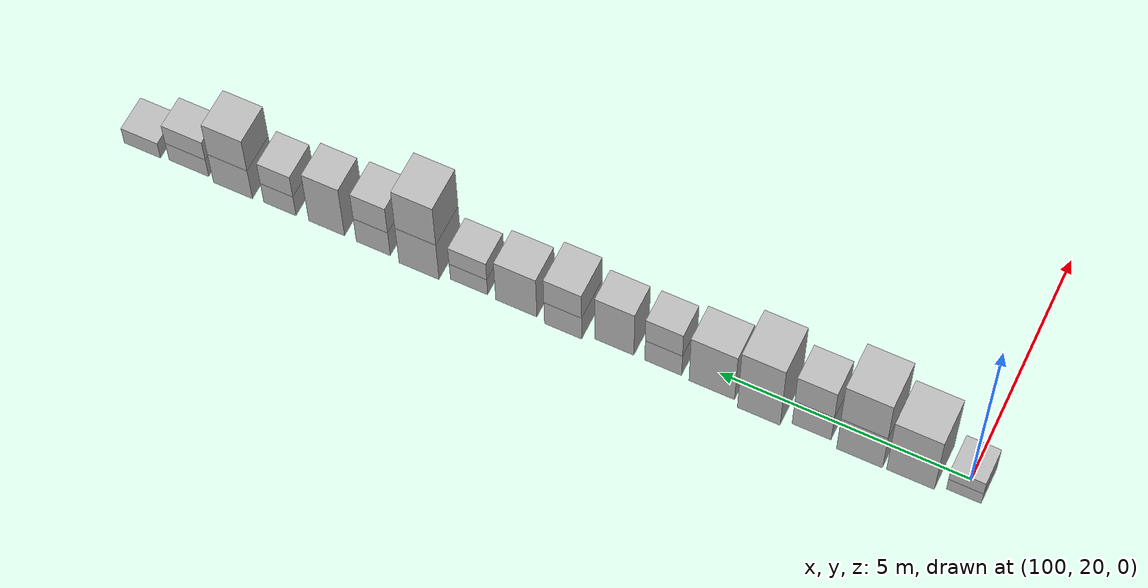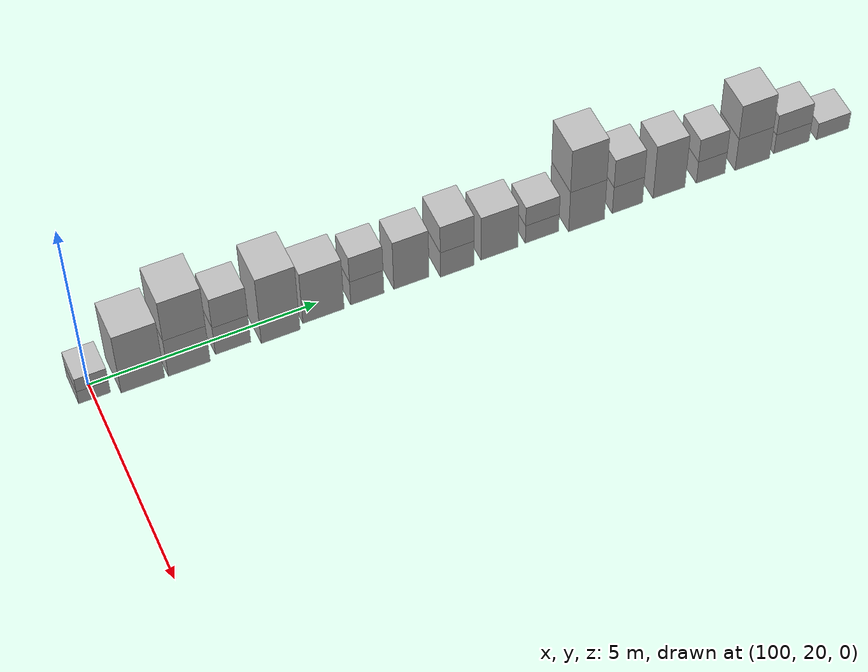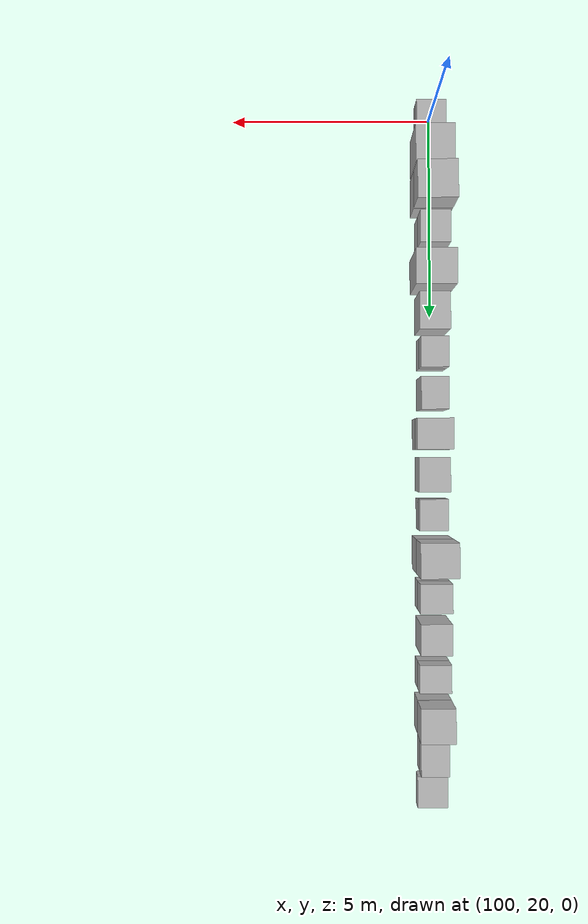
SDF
<sdf version="1.5">
 <world name="default">
  <model name="ground_plane">
   <static>true</static>
   <link name="link">
    <collision name="collision">
     <geometry><plane><normal>0 0 1</normal><size>250 250</size></plane></geometry>
     <surface><friction><ode><mu>1</mu><mu2>1</mu2></ode></friction></surface>
    </collision>
    <visual name="grass">
     <cast_shadows>false</cast_shadows>
     <geometry><mesh><uri>file://grass_plane/meshes/grass_plane.dae</uri></mesh></geometry>
    </visual>
   </link>
  </model>
  <model name="Cardboard_box_390">
   <link name="link_0">
    <pose>100 20 0 0 0 0</pose>
    <inertial>
     <mass>1</mass>
     <inertia>
      <ixx>0.166667</ixx>
      <ixy>0</ixy>
      <ixz>0</ixz>
      <iyy>0.166667</iyy>
      <iyz>0</iyz>
      <izz>0.166667</izz>
     </inertia>
    </inertial>
    <collision name="collision">
     <geometry>
      <mesh>
       <uri>model://Cardboard_box/meshes/cardboard_box.dae</uri>
       <scale>1.87556065422 1.71114517624 1.05224010482</scale>
      </mesh>
     </geometry>
    </collision>
    <visual name="visual">
     <geometry>
      <mesh>
       <uri>model://Cardboard_box/meshes/cardboard_box.dae</uri>
       <scale>1.87556065422 1.71114517624 1.05224010482</scale>
      </mesh>
     </geometry>
    </visual>
   </link>
   <static>1</static>
  </model>
  <model name="Cardboard_box_top_390">
   <link name="link_0">
    <pose>100 20 0.420896041928 0 0 0</pose>
    <inertial>
     <mass>1</mass>
     <inertia>
      <ixx>0.166667</ixx>
      <ixy>0</ixy>
      <ixz>0</ixz>
      <iyy>0.166667</iyy>
      <iyz>0</iyz>
      <izz>0.166667</izz>
     </inertia>
    </inertial>
    <collision name="collision">
     <geometry>
      <mesh>
       <uri>model://Cardboard_box/meshes/cardboard_box.dae</uri>
       <scale>1.87556065422 1.71114517624 1.05224010482</scale>
      </mesh>
     </geometry>
    </collision>
    <visual name="visual">
     <geometry>
      <mesh>
       <uri>model://Cardboard_box/meshes/cardboard_box.dae</uri>
       <scale>1.87556065422 1.71114517624 1.05224010482</scale>
      </mesh>
     </geometry>
    </visual>
   </link>
   <static>1</static>
  </model>
  <model name="Cardboard_box_391">
   <link name="link_0">
    <pose>100 21 0 0 0 0</pose>
    <inertial>
     <mass>1</mass>
     <inertia>
      <ixx>0.166667</ixx>
      <ixy>0</ixy>
      <ixz>0</ixz>
      <iyy>0.166667</iyy>
      <iyz>0</iyz>
      <izz>0.166667</izz>
     </inertia>
    </inertial>
    <collision name="collision">
     <geometry>
      <mesh>
       <uri>model://Cardboard_box/meshes/cardboard_box.dae</uri>
       <scale>2.40039671663 2.35947398998 4.75779150571</scale>
      </mesh>
     </geometry>
    </collision>
    <visual name="visual">
     <geometry>
      <mesh>
       <uri>model://Cardboard_box/meshes/cardboard_box.dae</uri>
       <scale>2.40039671663 2.35947398998 4.75779150571</scale>
      </mesh>
     </geometry>
    </visual>
   </link>
   <static>1</static>
  </model>
  <model name="Cardboard_box_392">
   <link name="link_0">
    <pose>100 22 0 0 0 0</pose>
    <inertial>
     <mass>1</mass>
     <inertia>
      <ixx>0.166667</ixx>
      <ixy>0</ixy>
      <ixz>0</ixz>
      <iyy>0.166667</iyy>
      <iyz>0</iyz>
      <izz>0.166667</izz>
     </inertia>
    </inertial>
    <collision name="collision">
     <geometry>
      <mesh>
       <uri>model://Cardboard_box/meshes/cardboard_box.dae</uri>
       <scale>2.43563004836 2.29058104501 3.10501950711</scale>
      </mesh>
     </geometry>
    </collision>
    <visual name="visual">
     <geometry>
      <mesh>
       <uri>model://Cardboard_box/meshes/cardboard_box.dae</uri>
       <scale>2.43563004836 2.29058104501 3.10501950711</scale>
      </mesh>
     </geometry>
    </visual>
   </link>
   <static>1</static>
  </model>
  <model name="Cardboard_box_top_392">
   <link name="link_0">
    <pose>100 22 1.24200780284 0 0 0</pose>
    <inertial>
     <mass>1</mass>
     <inertia>
      <ixx>0.166667</ixx>
      <ixy>0</ixy>
      <ixz>0</ixz>
      <iyy>0.166667</iyy>
      <iyz>0</iyz>
      <izz>0.166667</izz>
     </inertia>
    </inertial>
    <collision name="collision">
     <geometry>
      <mesh>
       <uri>model://Cardboard_box/meshes/cardboard_box.dae</uri>
       <scale>2.43563004836 2.29058104501 3.10501950711</scale>
      </mesh>
     </geometry>
    </collision>
    <visual name="visual">
     <geometry>
      <mesh>
       <uri>model://Cardboard_box/meshes/cardboard_box.dae</uri>
       <scale>2.43563004836 2.29058104501 3.10501950711</scale>
      </mesh>
     </geometry>
    </visual>
   </link>
   <static>1</static>
  </model>
  <model name="Cardboard_box_393">
   <link name="link_0">
    <pose>100 23 0 0 0 0</pose>
    <inertial>
     <mass>1</mass>
     <inertia>
      <ixx>0.166667</ixx>
      <ixy>0</ixy>
      <ixz>0</ixz>
      <iyy>0.166667</iyy>
      <iyz>0</iyz>
      <izz>0.166667</izz>
     </inertia>
    </inertial>
    <collision name="collision">
     <geometry>
      <mesh>
       <uri>model://Cardboard_box/meshes/cardboard_box.dae</uri>
       <scale>1.85336993509 1.95636914175 2.32344695447</scale>
      </mesh>
     </geometry>
    </collision>
    <visual name="visual">
     <geometry>
      <mesh>
       <uri>model://Cardboard_box/meshes/cardboard_box.dae</uri>
       <scale>1.85336993509 1.95636914175 2.32344695447</scale>
      </mesh>
     </geometry>
    </visual>
   </link>
   <static>1</static>
  </model>
  <model name="Cardboard_box_top_393">
   <link name="link_0">
    <pose>100 23 0.92937878179 0 0 0</pose>
    <inertial>
     <mass>1</mass>
     <inertia>
      <ixx>0.166667</ixx>
      <ixy>0</ixy>
      <ixz>0</ixz>
      <iyy>0.166667</iyy>
      <iyz>0</iyz>
      <izz>0.166667</izz>
     </inertia>
    </inertial>
    <collision name="collision">
     <geometry>
      <mesh>
       <uri>model://Cardboard_box/meshes/cardboard_box.dae</uri>
       <scale>1.85336993509 1.95636914175 2.32344695447</scale>
      </mesh>
     </geometry>
    </collision>
    <visual name="visual">
     <geometry>
      <mesh>
       <uri>model://Cardboard_box/meshes/cardboard_box.dae</uri>
       <scale>1.85336993509 1.95636914175 2.32344695447</scale>
      </mesh>
     </geometry>
    </visual>
   </link>
   <static>1</static>
  </model>
  <model name="Cardboard_box_394">
   <link name="link_0">
    <pose>100 24 0 0 0 0</pose>
    <inertial>
     <mass>1</mass>
     <inertia>
      <ixx>0.166667</ixx>
      <ixy>0</ixy>
      <ixz>0</ixz>
      <iyy>0.166667</iyy>
      <iyz>0</iyz>
      <izz>0.166667</izz>
     </inertia>
    </inertial>
    <collision name="collision">
     <geometry>
      <mesh>
       <uri>model://Cardboard_box/meshes/cardboard_box.dae</uri>
       <scale>2.49157968809 2.16108012156 5.37205537778</scale>
      </mesh>
     </geometry>
    </collision>
    <visual name="visual">
     <geometry>
      <mesh>
       <uri>model://Cardboard_box/meshes/cardboard_box.dae</uri>
       <scale>2.49157968809 2.16108012156 5.37205537778</scale>
      </mesh>
     </geometry>
    </visual>
   </link>
   <static>1</static>
  </model>
  <model name="Cardboard_box_395">
   <link name="link_0">
    <pose>100 25 0 0 0 0</pose>
    <inertial>
     <mass>1</mass>
     <inertia>
      <ixx>0.166667</ixx>
      <ixy>0</ixy>
      <ixz>0</ixz>
      <iyy>0.166667</iyy>
      <iyz>0</iyz>
      <izz>0.166667</izz>
     </inertia>
    </inertial>
    <collision name="collision">
     <geometry>
      <mesh>
       <uri>model://Cardboard_box/meshes/cardboard_box.dae</uri>
       <scale>1.88702617052 2.3217900141 4.16092421792</scale>
      </mesh>
     </geometry>
    </collision>
    <visual name="visual">
     <geometry>
      <mesh>
       <uri>model://Cardboard_box/meshes/cardboard_box.dae</uri>
       <scale>1.88702617052 2.3217900141 4.16092421792</scale>
      </mesh>
     </geometry>
    </visual>
   </link>
   <static>1</static>
  </model>
  <model name="Cardboard_box_396">
   <link name="link_0">
    <pose>100 26 0 0 0 0</pose>
    <inertial>
     <mass>1</mass>
     <inertia>
      <ixx>0.166667</ixx>
      <ixy>0</ixy>
      <ixz>0</ixz>
      <iyy>0.166667</iyy>
      <iyz>0</iyz>
      <izz>0.166667</izz>
     </inertia>
    </inertial>
    <collision name="collision">
     <geometry>
      <mesh>
       <uri>model://Cardboard_box/meshes/cardboard_box.dae</uri>
       <scale>1.71821019752 1.88590019573 1.9733007212</scale>
      </mesh>
     </geometry>
    </collision>
    <visual name="visual">
     <geometry>
      <mesh>
       <uri>model://Cardboard_box/meshes/cardboard_box.dae</uri>
       <scale>1.71821019752 1.88590019573 1.9733007212</scale>
      </mesh>
     </geometry>
    </visual>
   </link>
   <static>1</static>
  </model>
  <model name="Cardboard_box_top_396">
   <link name="link_0">
    <pose>100 26 0.789320288481 0 0 0</pose>
    <inertial>
     <mass>1</mass>
     <inertia>
      <ixx>0.166667</ixx>
      <ixy>0</ixy>
      <ixz>0</ixz>
      <iyy>0.166667</iyy>
      <iyz>0</iyz>
      <izz>0.166667</izz>
     </inertia>
    </inertial>
    <collision name="collision">
     <geometry>
      <mesh>
       <uri>model://Cardboard_box/meshes/cardboard_box.dae</uri>
       <scale>1.71821019752 1.88590019573 1.9733007212</scale>
      </mesh>
     </geometry>
    </collision>
    <visual name="visual">
     <geometry>
      <mesh>
       <uri>model://Cardboard_box/meshes/cardboard_box.dae</uri>
       <scale>1.71821019752 1.88590019573 1.9733007212</scale>
      </mesh>
     </geometry>
    </visual>
   </link>
   <static>1</static>
  </model>
  <model name="Cardboard_box_397">
   <link name="link_0">
    <pose>100 27 0 0 0 0</pose>
    <inertial>
     <mass>1</mass>
     <inertia>
      <ixx>0.166667</ixx>
      <ixy>0</ixy>
      <ixz>0</ixz>
      <iyy>0.166667</iyy>
      <iyz>0</iyz>
      <izz>0.166667</izz>
     </inertia>
    </inertial>
    <collision name="collision">
     <geometry>
      <mesh>
       <uri>model://Cardboard_box/meshes/cardboard_box.dae</uri>
       <scale>1.70413868376 2.02480564103 3.91304158672</scale>
      </mesh>
     </geometry>
    </collision>
    <visual name="visual">
     <geometry>
      <mesh>
       <uri>model://Cardboard_box/meshes/cardboard_box.dae</uri>
       <scale>1.70413868376 2.02480564103 3.91304158672</scale>
      </mesh>
     </geometry>
    </visual>
   </link>
   <static>1</static>
  </model>
  <model name="Cardboard_box_398">
   <link name="link_0">
    <pose>100 28 0 0 0 0</pose>
    <inertial>
     <mass>1</mass>
     <inertia>
      <ixx>0.166667</ixx>
      <ixy>0</ixy>
      <ixz>0</ixz>
      <iyy>0.166667</iyy>
      <iyz>0</iyz>
      <izz>0.166667</izz>
     </inertia>
    </inertial>
    <collision name="collision">
     <geometry>
      <mesh>
       <uri>model://Cardboard_box/meshes/cardboard_box.dae</uri>
       <scale>2.25365084118 1.93574905981 2.09267882898</scale>
      </mesh>
     </geometry>
    </collision>
    <visual name="visual">
     <geometry>
      <mesh>
       <uri>model://Cardboard_box/meshes/cardboard_box.dae</uri>
       <scale>2.25365084118 1.93574905981 2.09267882898</scale>
      </mesh>
     </geometry>
    </visual>
   </link>
   <static>1</static>
  </model>
  <model name="Cardboard_box_top_398">
   <link name="link_0">
    <pose>100 28 0.83707153159 0 0 0</pose>
    <inertial>
     <mass>1</mass>
     <inertia>
      <ixx>0.166667</ixx>
      <ixy>0</ixy>
      <ixz>0</ixz>
      <iyy>0.166667</iyy>
      <iyz>0</iyz>
      <izz>0.166667</izz>
     </inertia>
    </inertial>
    <collision name="collision">
     <geometry>
      <mesh>
       <uri>model://Cardboard_box/meshes/cardboard_box.dae</uri>
       <scale>2.25365084118 1.93574905981 2.09267882898</scale>
      </mesh>
     </geometry>
    </collision>
    <visual name="visual">
     <geometry>
      <mesh>
       <uri>model://Cardboard_box/meshes/cardboard_box.dae</uri>
       <scale>2.25365084118 1.93574905981 2.09267882898</scale>
      </mesh>
     </geometry>
    </visual>
   </link>
   <static>1</static>
  </model>
  <model name="Cardboard_box_399">
   <link name="link_0">
    <pose>100 29 0 0 0 0</pose>
    <inertial>
     <mass>1</mass>
     <inertia>
      <ixx>0.166667</ixx>
      <ixy>0</ixy>
      <ixz>0</ixz>
      <iyy>0.166667</iyy>
      <iyz>0</iyz>
      <izz>0.166667</izz>
     </inertia>
    </inertial>
    <collision name="collision">
     <geometry>
      <mesh>
       <uri>model://Cardboard_box/meshes/cardboard_box.dae</uri>
       <scale>1.94474764664 2.15890422166 3.5445297663</scale>
      </mesh>
     </geometry>
    </collision>
    <visual name="visual">
     <geometry>
      <mesh>
       <uri>model://Cardboard_box/meshes/cardboard_box.dae</uri>
       <scale>1.94474764664 2.15890422166 3.5445297663</scale>
      </mesh>
     </geometry>
    </visual>
   </link>
   <static>1</static>
  </model>
  <model name="Cardboard_box_400">
   <link name="link_0">
    <pose>100 30 0 0 0 0</pose>
    <inertial>
     <mass>1</mass>
     <inertia>
      <ixx>0.166667</ixx>
      <ixy>0</ixy>
      <ixz>0</ixz>
      <iyy>0.166667</iyy>
      <iyz>0</iyz>
      <izz>0.166667</izz>
     </inertia>
    </inertial>
    <collision name="collision">
     <geometry>
      <mesh>
       <uri>model://Cardboard_box/meshes/cardboard_box.dae</uri>
       <scale>1.81293050139 1.9681332101 1.48387738203</scale>
      </mesh>
     </geometry>
    </collision>
    <visual name="visual">
     <geometry>
      <mesh>
       <uri>model://Cardboard_box/meshes/cardboard_box.dae</uri>
       <scale>1.81293050139 1.9681332101 1.48387738203</scale>
      </mesh>
     </geometry>
    </visual>
   </link>
   <static>1</static>
  </model>
  <model name="Cardboard_box_top_400">
   <link name="link_0">
    <pose>100 30 0.593550952813 0 0 0</pose>
    <inertial>
     <mass>1</mass>
     <inertia>
      <ixx>0.166667</ixx>
      <ixy>0</ixy>
      <ixz>0</ixz>
      <iyy>0.166667</iyy>
      <iyz>0</iyz>
      <izz>0.166667</izz>
     </inertia>
    </inertial>
    <collision name="collision">
     <geometry>
      <mesh>
       <uri>model://Cardboard_box/meshes/cardboard_box.dae</uri>
       <scale>1.81293050139 1.9681332101 1.48387738203</scale>
      </mesh>
     </geometry>
    </collision>
    <visual name="visual">
     <geometry>
      <mesh>
       <uri>model://Cardboard_box/meshes/cardboard_box.dae</uri>
       <scale>1.81293050139 1.9681332101 1.48387738203</scale>
      </mesh>
     </geometry>
    </visual>
   </link>
   <static>1</static>
  </model>
  <model name="Cardboard_box_401">
   <link name="link_0">
    <pose>100 31 0 0 0 0</pose>
    <inertial>
     <mass>1</mass>
     <inertia>
      <ixx>0.166667</ixx>
      <ixy>0</ixy>
      <ixz>0</ixz>
      <iyy>0.166667</iyy>
      <iyz>0</iyz>
      <izz>0.166667</izz>
     </inertia>
    </inertial>
    <collision name="collision">
     <geometry>
      <mesh>
       <uri>model://Cardboard_box/meshes/cardboard_box.dae</uri>
       <scale>2.31557124067 2.12156131713 3.31826339976</scale>
      </mesh>
     </geometry>
    </collision>
    <visual name="visual">
     <geometry>
      <mesh>
       <uri>model://Cardboard_box/meshes/cardboard_box.dae</uri>
       <scale>2.31557124067 2.12156131713 3.31826339976</scale>
      </mesh>
     </geometry>
    </visual>
   </link>
   <static>1</static>
  </model>
  <model name="Cardboard_box_top_401">
   <link name="link_0">
    <pose>100 31 1.3273053599 0 0 0</pose>
    <inertial>
     <mass>1</mass>
     <inertia>
      <ixx>0.166667</ixx>
      <ixy>0</ixy>
      <ixz>0</ixz>
      <iyy>0.166667</iyy>
      <iyz>0</iyz>
      <izz>0.166667</izz>
     </inertia>
    </inertial>
    <collision name="collision">
     <geometry>
      <mesh>
       <uri>model://Cardboard_box/meshes/cardboard_box.dae</uri>
       <scale>2.31557124067 2.12156131713 3.31826339976</scale>
      </mesh>
     </geometry>
    </collision>
    <visual name="visual">
     <geometry>
      <mesh>
       <uri>model://Cardboard_box/meshes/cardboard_box.dae</uri>
       <scale>2.31557124067 2.12156131713 3.31826339976</scale>
      </mesh>
     </geometry>
    </visual>
   </link>
   <static>1</static>
  </model>
  <model name="Cardboard_box_402">
   <link name="link_0">
    <pose>100 32 0 0 0 0</pose>
    <inertial>
     <mass>1</mass>
     <inertia>
      <ixx>0.166667</ixx>
      <ixy>0</ixy>
      <ixz>0</ixz>
      <iyy>0.166667</iyy>
      <iyz>0</iyz>
      <izz>0.166667</izz>
     </inertia>
    </inertial>
    <collision name="collision">
     <geometry>
      <mesh>
       <uri>model://Cardboard_box/meshes/cardboard_box.dae</uri>
       <scale>1.99323523398 1.81511455992 2.19188613404</scale>
      </mesh>
     </geometry>
    </collision>
    <visual name="visual">
     <geometry>
      <mesh>
       <uri>model://Cardboard_box/meshes/cardboard_box.dae</uri>
       <scale>1.99323523398 1.81511455992 2.19188613404</scale>
      </mesh>
     </geometry>
    </visual>
   </link>
   <static>1</static>
  </model>
  <model name="Cardboard_box_top_402">
   <link name="link_0">
    <pose>100 32 0.876754453616 0 0 0</pose>
    <inertial>
     <mass>1</mass>
     <inertia>
      <ixx>0.166667</ixx>
      <ixy>0</ixy>
      <ixz>0</ixz>
      <iyy>0.166667</iyy>
      <iyz>0</iyz>
      <izz>0.166667</izz>
     </inertia>
    </inertial>
    <collision name="collision">
     <geometry>
      <mesh>
       <uri>model://Cardboard_box/meshes/cardboard_box.dae</uri>
       <scale>1.99323523398 1.81511455992 2.19188613404</scale>
      </mesh>
     </geometry>
    </collision>
    <visual name="visual">
     <geometry>
      <mesh>
       <uri>model://Cardboard_box/meshes/cardboard_box.dae</uri>
       <scale>1.99323523398 1.81511455992 2.19188613404</scale>
      </mesh>
     </geometry>
    </visual>
   </link>
   <static>1</static>
  </model>
  <model name="Cardboard_box_403">
   <link name="link_0">
    <pose>100 33 0 0 0 0</pose>
    <inertial>
     <mass>1</mass>
     <inertia>
      <ixx>0.166667</ixx>
      <ixy>0</ixy>
      <ixz>0</ixz>
      <iyy>0.166667</iyy>
      <iyz>0</iyz>
      <izz>0.166667</izz>
     </inertia>
    </inertial>
    <collision name="collision">
     <geometry>
      <mesh>
       <uri>model://Cardboard_box/meshes/cardboard_box.dae</uri>
       <scale>1.93893715397 1.92611406102 4.28713015997</scale>
      </mesh>
     </geometry>
    </collision>
    <visual name="visual">
     <geometry>
      <mesh>
       <uri>model://Cardboard_box/meshes/cardboard_box.dae</uri>
       <scale>1.93893715397 1.92611406102 4.28713015997</scale>
      </mesh>
     </geometry>
    </visual>
   </link>
   <static>1</static>
  </model>
  <model name="Cardboard_box_404">
   <link name="link_0">
    <pose>100 34 0 0 0 0</pose>
    <inertial>
     <mass>1</mass>
     <inertia>
      <ixx>0.166667</ixx>
      <ixy>0</ixy>
      <ixz>0</ixz>
      <iyy>0.166667</iyy>
      <iyz>0</iyz>
      <izz>0.166667</izz>
     </inertia>
    </inertial>
    <collision name="collision">
     <geometry>
      <mesh>
       <uri>model://Cardboard_box/meshes/cardboard_box.dae</uri>
       <scale>1.98408266864 1.74687775823 1.78677565538</scale>
      </mesh>
     </geometry>
    </collision>
    <visual name="visual">
     <geometry>
      <mesh>
       <uri>model://Cardboard_box/meshes/cardboard_box.dae</uri>
       <scale>1.98408266864 1.74687775823 1.78677565538</scale>
      </mesh>
     </geometry>
    </visual>
   </link>
   <static>1</static>
  </model>
  <model name="Cardboard_box_top_404">
   <link name="link_0">
    <pose>100 34 0.714710262152 0 0 0</pose>
    <inertial>
     <mass>1</mass>
     <inertia>
      <ixx>0.166667</ixx>
      <ixy>0</ixy>
      <ixz>0</ixz>
      <iyy>0.166667</iyy>
      <iyz>0</iyz>
      <izz>0.166667</izz>
     </inertia>
    </inertial>
    <collision name="collision">
     <geometry>
      <mesh>
       <uri>model://Cardboard_box/meshes/cardboard_box.dae</uri>
       <scale>1.98408266864 1.74687775823 1.78677565538</scale>
      </mesh>
     </geometry>
    </collision>
    <visual name="visual">
     <geometry>
      <mesh>
       <uri>model://Cardboard_box/meshes/cardboard_box.dae</uri>
       <scale>1.98408266864 1.74687775823 1.78677565538</scale>
      </mesh>
     </geometry>
    </visual>
   </link>
   <static>1</static>
  </model>
  <model name="Cardboard_box_405">
   <link name="link_0">
    <pose>100 35 0 0 0 0</pose>
    <inertial>
     <mass>1</mass>
     <inertia>
      <ixx>0.166667</ixx>
      <ixy>0</ixy>
      <ixz>0</ixz>
      <iyy>0.166667</iyy>
      <iyz>0</iyz>
      <izz>0.166667</izz>
     </inertia>
    </inertial>
    <collision name="collision">
     <geometry>
      <mesh>
       <uri>model://Cardboard_box/meshes/cardboard_box.dae</uri>
       <scale>2.11709027303 2.12447279819 2.62600866845</scale>
      </mesh>
     </geometry>
    </collision>
    <visual name="visual">
     <geometry>
      <mesh>
       <uri>model://Cardboard_box/meshes/cardboard_box.dae</uri>
       <scale>2.11709027303 2.12447279819 2.62600866845</scale>
      </mesh>
     </geometry>
    </visual>
   </link>
   <static>1</static>
  </model>
  <model name="Cardboard_box_top_405">
   <link name="link_0">
    <pose>100 35 1.05040346738 0 0 0</pose>
    <inertial>
     <mass>1</mass>
     <inertia>
      <ixx>0.166667</ixx>
      <ixy>0</ixy>
      <ixz>0</ixz>
      <iyy>0.166667</iyy>
      <iyz>0</iyz>
      <izz>0.166667</izz>
     </inertia>
    </inertial>
    <collision name="collision">
     <geometry>
      <mesh>
       <uri>model://Cardboard_box/meshes/cardboard_box.dae</uri>
       <scale>2.11709027303 2.12447279819 2.62600866845</scale>
      </mesh>
     </geometry>
    </collision>
    <visual name="visual">
     <geometry>
      <mesh>
       <uri>model://Cardboard_box/meshes/cardboard_box.dae</uri>
       <scale>2.11709027303 2.12447279819 2.62600866845</scale>
      </mesh>
     </geometry>
    </visual>
   </link>
   <static>1</static>
  </model>
  <model name="Cardboard_box_406">
   <link name="link_0">
    <pose>100 36 0 0 0 0</pose>
    <inertial>
     <mass>1</mass>
     <inertia>
      <ixx>0.166667</ixx>
      <ixy>0</ixy>
      <ixz>0</ixz>
      <iyy>0.166667</iyy>
      <iyz>0</iyz>
      <izz>0.166667</izz>
     </inertia>
    </inertial>
    <collision name="collision">
     <geometry>
      <mesh>
       <uri>model://Cardboard_box/meshes/cardboard_box.dae</uri>
       <scale>1.75400705902 2.18284665204 1.56447186169</scale>
      </mesh>
     </geometry>
    </collision>
    <visual name="visual">
     <geometry>
      <mesh>
       <uri>model://Cardboard_box/meshes/cardboard_box.dae</uri>
       <scale>1.75400705902 2.18284665204 1.56447186169</scale>
      </mesh>
     </geometry>
    </visual>
   </link>
   <static>1</static>
  </model>
  <model name="Cardboard_box_top_406">
   <link name="link_0">
    <pose>100 36 0.625788744675 0 0 0</pose>
    <inertial>
     <mass>1</mass>
     <inertia>
      <ixx>0.166667</ixx>
      <ixy>0</ixy>
      <ixz>0</ixz>
      <iyy>0.166667</iyy>
      <iyz>0</iyz>
      <izz>0.166667</izz>
     </inertia>
    </inertial>
    <collision name="collision">
     <geometry>
      <mesh>
       <uri>model://Cardboard_box/meshes/cardboard_box.dae</uri>
       <scale>1.75400705902 2.18284665204 1.56447186169</scale>
      </mesh>
     </geometry>
    </collision>
    <visual name="visual">
     <geometry>
      <mesh>
       <uri>model://Cardboard_box/meshes/cardboard_box.dae</uri>
       <scale>1.75400705902 2.18284665204 1.56447186169</scale>
      </mesh>
     </geometry>
    </visual>
   </link>
   <static>1</static>
  </model>
  <model name="Cardboard_box_407">
   <link name="link_0">
    <pose>100 37 0 0 0 0</pose>
    <inertial>
     <mass>1</mass>
     <inertia>
      <ixx>0.166667</ixx>
      <ixy>0</ixy>
      <ixz>0</ixz>
      <iyy>0.166667</iyy>
      <iyz>0</iyz>
      <izz>0.166667</izz>
     </inertia>
    </inertial>
    <collision name="collision">
     <geometry>
      <mesh>
       <uri>model://Cardboard_box/meshes/cardboard_box.dae</uri>
       <scale>1.92321238124 2.00071622622 1.32629941026</scale>
      </mesh>
     </geometry>
    </collision>
    <visual name="visual">
     <geometry>
      <mesh>
       <uri>model://Cardboard_box/meshes/cardboard_box.dae</uri>
       <scale>1.92321238124 2.00071622622 1.32629941026</scale>
      </mesh>
     </geometry>
    </visual>
   </link>
   <static>1</static>
  </model>
 </world>
</sdf>
